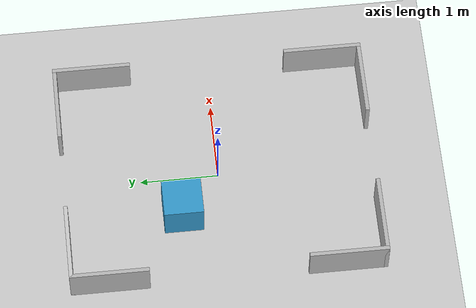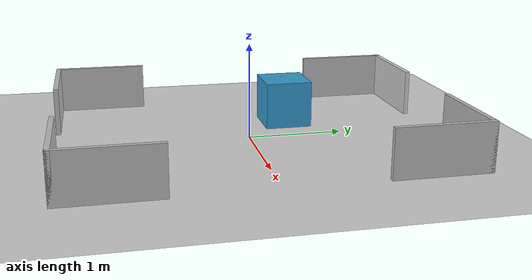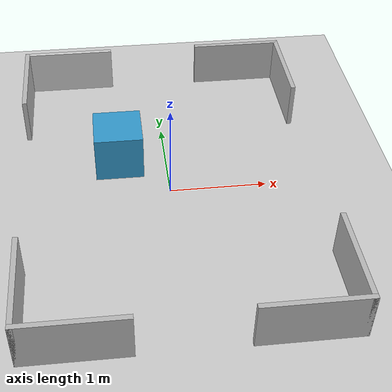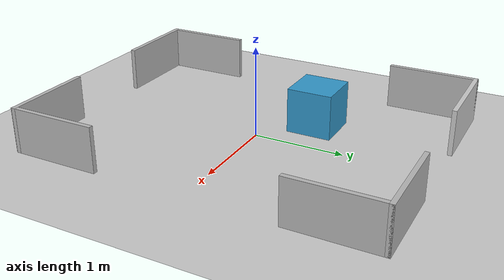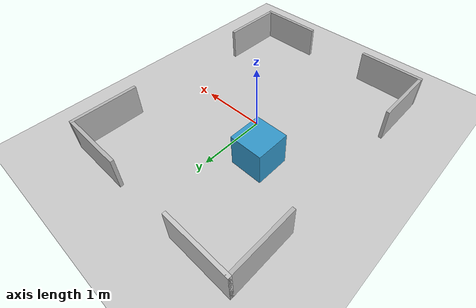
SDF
<?xml version="1.0"?>
<sdf version="1.6">
  <world name="map_3x4_Lcorners">

    <!-- Boden + Sonne -->
    <include><uri>model://ground_plane</uri></include>
    <include><uri>model://sun</uri></include>

    <!-- --- Oben links (Top-Left) --- -->
    <model name="tl_horizontal">
      <static>true</static>
      <link name="link">
        <collision name="coll">
          <geometry><box><size>1.0 0.05 0.5</size></box></geometry>
        </collision>
        <visual name="vis">
          <geometry><box><size>1.0 0.05 0.5</size></box></geometry>
          <material><ambient>0.8 0.8 0.8 1</ambient></material>
        </visual>
        <!-- x = -1.0 (mittig über 1m), y = 2 - t/2, z = h/2 -->
        <pose>-1.0 1.975 0.25 0 0 0</pose>
      </link>
    </model>

    <model name="tl_vertical">
      <static>true</static>
      <link name="link">
        <collision name="coll">
          <geometry><box><size>0.05 1.0 0.5</size></box></geometry>
        </collision>
        <visual name="vis">
          <geometry><box><size>0.05 1.0 0.5</size></box></geometry>
        </visual>
        <!-- x = -1.5 + t/2, y = 1.5 (mittig über 1m), z = h/2 -->
        <pose>-1.475 1.5 0.25 0 0 0</pose>
      </link>
    </model>

    <!-- --- Oben rechts (Top-Right) --- -->
    <model name="tr_horizontal">
      <static>true</static>
      <link name="link">
        <collision name="coll">
          <geometry><box><size>1.0 0.05 0.5</size></box></geometry>
        </collision>
        <visual name="vis">
          <geometry><box><size>1.0 0.05 0.5</size></box></geometry>
        </visual>
        <pose>1.0 1.975 0.25 0 0 0</pose>
      </link>
    </model>

    <model name="tr_vertical">
      <static>true</static>
      <link name="link">
        <collision name="coll">
          <geometry><box><size>0.05 1.0 0.5</size></box></geometry>
        </collision>
        <visual name="vis">
          <geometry><box><size>0.05 1.0 0.5</size></box></geometry>
        </visual>
        <pose>1.475 1.5 0.25 0 0 0</pose>
      </link>
    </model>

    <!-- --- Unten links (Bottom-Left) --- -->
    <model name="bl_horizontal">
      <static>true</static>
      <link name="link">
        <collision name="coll">
          <geometry><box><size>1.0 0.05 0.5</size></box></geometry>
        </collision>
        <visual name="vis">
          <geometry><box><size>1.0 0.05 0.5</size></box></geometry>
        </visual>
        <pose>-1.0 -1.975 0.25 0 0 0</pose>
      </link>
    </model>

    <model name="bl_vertical">
      <static>true</static>
      <link name="link">
        <collision name="coll">
          <geometry><box><size>0.05 1.0 0.5</size></box></geometry>
        </collision>
        <visual name="vis">
          <geometry><box><size>0.05 1.0 0.5</size></box></geometry>
        </visual>
        <pose>-1.475 -1.5 0.25 0 0 0</pose>
      </link>
    </model>

    <!-- --- Unten rechts (Bottom-Right) --- -->
    <model name="br_horizontal">
      <static>true</static>
      <link name="link">
        <collision name="coll">
          <geometry><box><size>1.0 0.05 0.5</size></box></geometry>
        </collision>
        <visual name="vis">
          <geometry><box><size>1.0 0.05 0.5</size></box></geometry>
        </visual>
        <pose>1.0 -1.975 0.25 0 0 0</pose>
      </link>
    </model>

    <model name="br_vertical">
      <static>true</static>
      <link name="link">
        <collision name="coll">
          <geometry><box><size>0.05 1.0 0.5</size></box></geometry>
        </collision>
        <visual name="vis">
          <geometry><box><size>0.05 1.0 0.5</size></box></geometry>
        </visual>
        <pose>1.475 -1.5 0.25 0 0 0</pose>
      </link>
    </model>

    <!-- --- kleiner Würfel oben-links (0.5 m) --- -->
    <model name="small_cube">
      <static>true</static>
      <link name="link">
        <collision name="coll">
          <geometry><box><size>0.5 0.5 0.5</size></box></geometry>
        </collision>
        <visual name="vis">
          <geometry><box><size>0.5 0.5 0.5</size></box></geometry>
          <material><ambient>0.2 0.6 0.8 1</ambient></material>
        </visual>
        <!-- Position: x = -0.5, y = 0.5 (innen, frei von Kollisionen mit den L-Wänden) -->
        <pose>-0.5 0.5 0.25 0 0 0</pose>
      </link>
    </model>

  </world>
</sdf>
